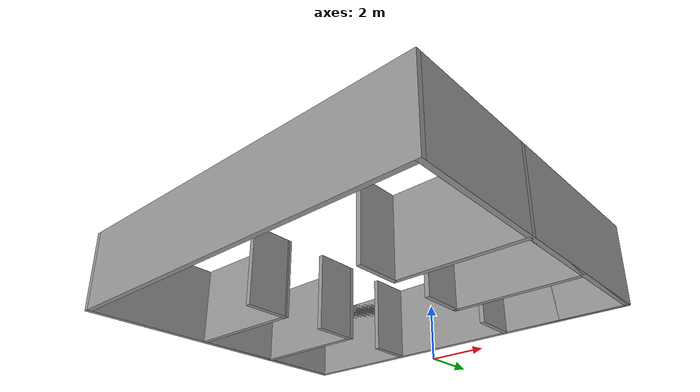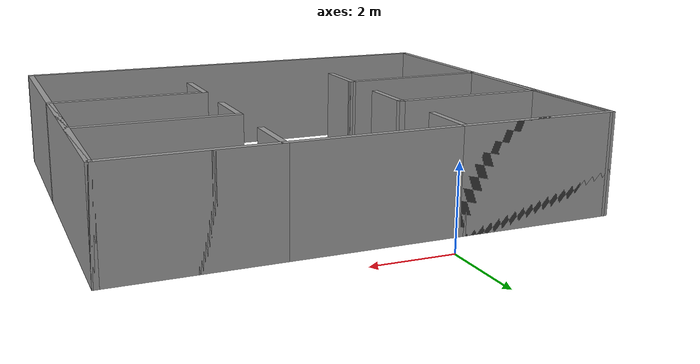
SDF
<?xml version='1.0'?>
<sdf version='1.7'>
  <model name='room1'>
    <pose>1.36453 -5.4325 0 0 -0 0</pose>
    <link name='Wall_0'>
      <collision name='Wall_0_Collision'>
        <geometry>
          <box>
            <size>12 0.15 2.5</size>
          </box>
        </geometry>
        <pose>0 0 1.25 0 -0 0</pose>
      </collision>
      <visual name='Wall_0_Visual'>
        <pose>0 0 1.25 0 -0 0</pose>
        <geometry>
          <box>
            <size>12 0.15 2.5</size>
          </box>
        </geometry>
        <material>
          <script>
            <uri>file://media/materials/scripts/gazebo.material</uri>
            <name>Gazebo/Grey</name>
          </script>
          <ambient>1 1 1 1</ambient>
        </material>
        <meta>
          <layer>0</layer>
        </meta>
      </visual>
      <pose>0.000467 4.4925 0 0 -0 0</pose>
    </link>
    <link name='Wall_1'>
      <collision name='Wall_1_Collision'>
        <geometry>
          <box>
            <size>10 0.15 2.5</size>
          </box>
        </geometry>
        <pose>0 0 1.25 0 -0 0</pose>
      </collision>
      <visual name='Wall_1_Visual'>
        <pose>0 0 1.25 0 -0 0</pose>
        <geometry>
          <box>
            <size>10 0.15 2.5</size>
          </box>
        </geometry>
        <material>
          <script>
            <uri>file://media/materials/scripts/gazebo.material</uri>
            <name>Gazebo/Grey</name>
          </script>
          <ambient>1 1 1 1</ambient>
        </material>
        <meta>
          <layer>0</layer>
        </meta>
      </visual>
      <pose>5.92547 -0.4325 0 0 -0 -1.5708</pose>
    </link>
    <link name='Wall_2'>
      <collision name='Wall_2_Collision'>
        <geometry>
          <box>
            <size>12 0.15 2.5</size>
          </box>
        </geometry>
        <pose>0 0 1.25 0 -0 0</pose>
      </collision>
      <visual name='Wall_2_Visual'>
        <pose>0 0 1.25 0 -0 0</pose>
        <geometry>
          <box>
            <size>12 0.15 2.5</size>
          </box>
        </geometry>
        <material>
          <script>
            <uri>file://media/materials/scripts/gazebo.material</uri>
            <name>Gazebo/Grey</name>
          </script>
          <ambient>1 1 1 1</ambient>
        </material>
        <meta>
          <layer>0</layer>
        </meta>
      </visual>
      <pose>0.000467 -5.3575 0 0 -0 3.14159</pose>
    </link>
    <link name='Wall_25'>
      <collision name='Wall_25_Collision'>
        <geometry>
          <box>
            <size>4 0.15 2.5</size>
          </box>
        </geometry>
        <pose>0 0 1.25 0 -0 0</pose>
      </collision>
      <visual name='Wall_25_Visual'>
        <pose>0 0 1.25 0 -0 0</pose>
        <geometry>
          <box>
            <size>4 0.15 2.5</size>
          </box>
        </geometry>
        <material>
          <script>
            <uri>file://media/materials/scripts/gazebo.material</uri>
            <name>Gazebo/Grey</name>
          </script>
          <ambient>1 1 1 1</ambient>
        </material>
        <meta>
          <layer>0</layer>
        </meta>
      </visual>
      <pose>-3.99953 4.4925 0 0 -0 0</pose>
    </link>
    <link name='Wall_26'>
      <collision name='Wall_26_Collision'>
        <geometry>
          <box>
            <size>1.5 0.15 2.5</size>
          </box>
        </geometry>
        <pose>0 0 1.25 0 -0 0</pose>
      </collision>
      <visual name='Wall_26_Visual'>
        <pose>0 0 1.25 0 -0 0</pose>
        <geometry>
          <box>
            <size>1.5 0.15 2.5</size>
          </box>
        </geometry>
        <material>
          <script>
            <uri>file://media/materials/scripts/gazebo.material</uri>
            <name>Gazebo/Grey</name>
          </script>
          <ambient>1 1 1 1</ambient>
        </material>
        <meta>
          <layer>0</layer>
        </meta>
      </visual>
      <pose>-2.07453 3.8175 0 0 -0 -1.5708</pose>
    </link>
    <link name='Wall_28'>
      <collision name='Wall_28_Collision'>
        <geometry>
          <box>
            <size>4 0.15 2.5</size>
          </box>
        </geometry>
        <pose>0 0 1.25 0 -0 0</pose>
      </collision>
      <visual name='Wall_28_Visual'>
        <pose>0 0 1.25 0 -0 0</pose>
        <geometry>
          <box>
            <size>4 0.15 2.5</size>
          </box>
        </geometry>
        <material>
          <script>
            <uri>file://media/materials/scripts/gazebo.material</uri>
            <name>Gazebo/Grey</name>
          </script>
          <ambient>1 1 1 1</ambient>
        </material>
        <meta>
          <layer>0</layer>
        </meta>
      </visual>
      <pose>4.00047 4.4925 0 0 -0 3.14159</pose>
    </link>
    <link name='Wall_29'>
      <collision name='Wall_29_Collision'>
        <geometry>
          <box>
            <size>1.5 0.15 2.5</size>
          </box>
        </geometry>
        <pose>0 0 1.25 0 -0 0</pose>
      </collision>
      <visual name='Wall_29_Visual'>
        <pose>0 0 1.25 0 -0 0</pose>
        <geometry>
          <box>
            <size>1.5 0.15 2.5</size>
          </box>
        </geometry>
        <material>
          <script>
            <uri>file://media/materials/scripts/gazebo.material</uri>
            <name>Gazebo/Grey</name>
          </script>
          <ambient>1 1 1 1</ambient>
        </material>
        <meta>
          <layer>0</layer>
        </meta>
      </visual>
      <pose>2.07547 3.8175 0 0 -0 -1.5708</pose>
    </link>
    <link name='Wall_3'>
      <collision name='Wall_3_Collision'>
        <geometry>
          <box>
            <size>10 0.15 2.5</size>
          </box>
        </geometry>
        <pose>0 0 1.25 0 -0 0</pose>
      </collision>
      <visual name='Wall_3_Visual'>
        <pose>0 0 1.25 0 -0 0</pose>
        <geometry>
          <box>
            <size>10 0.15 2.5</size>
          </box>
        </geometry>
        <material>
          <script>
            <uri>file://media/materials/scripts/gazebo.material</uri>
            <name>Gazebo/Grey</name>
          </script>
          <ambient>1 1 1 1</ambient>
        </material>
        <meta>
          <layer>0</layer>
        </meta>
      </visual>
      <pose>-5.92453 -0.4325 0 0 -0 1.5708</pose>
    </link>
    <link name='Wall_31'>
      <collision name='Wall_31_Collision'>
        <geometry>
          <box>
            <size>3.00016 0.15 2.5</size>
          </box>
        </geometry>
        <pose>0 0 1.25 0 -0 0</pose>
      </collision>
      <visual name='Wall_31_Visual'>
        <pose>0 0 1.25 0 -0 0</pose>
        <geometry>
          <box>
            <size>3.00016 0.15 2.5</size>
          </box>
        </geometry>
        <material>
          <script>
            <uri>file://media/materials/scripts/gazebo.material</uri>
            <name>Gazebo/Grey</name>
          </script>
          <ambient>1 1 1 1</ambient>
        </material>
        <meta>
          <layer>0</layer>
        </meta>
      </visual>
      <pose>-5.90932 3.0675 0 0 -0 -1.56012</pose>
    </link>
    <link name='Wall_35'>
      <collision name='Wall_35_Collision'>
        <geometry>
          <box>
            <size>3.03058 0.15 2.5</size>
          </box>
        </geometry>
        <pose>0 0 1.25 0 -0 0</pose>
      </collision>
      <visual name='Wall_35_Visual'>
        <pose>0 0 1.25 0 -0 0</pose>
        <geometry>
          <box>
            <size>3.03058 0.15 2.5</size>
          </box>
        </geometry>
        <material>
          <script>
            <uri>file://media/materials/scripts/gazebo.material</uri>
            <name>Gazebo/Grey</name>
          </script>
          <ambient>1 1 1 1</ambient>
        </material>
        <meta>
          <layer>0</layer>
        </meta>
      </visual>
      <pose>-5.90932 0.202291 0 0 -0 -1.58136</pose>
    </link>
    <link name='Wall_36'>
      <collision name='Wall_36_Collision'>
        <geometry>
          <box>
            <size>4 0.15 2.5</size>
          </box>
        </geometry>
        <pose>0 0 1.25 0 -0 0</pose>
      </collision>
      <visual name='Wall_36_Visual'>
        <pose>0 0 1.25 0 -0 0</pose>
        <geometry>
          <box>
            <size>4 0.15 2.5</size>
          </box>
        </geometry>
        <material>
          <script>
            <uri>file://media/materials/scripts/gazebo.material</uri>
            <name>Gazebo/Grey</name>
          </script>
          <ambient>1 1 1 1</ambient>
        </material>
        <meta>
          <layer>0</layer>
        </meta>
      </visual>
      <pose>-3.99953 -1.23792 0 0 -0 0.0158</pose>
    </link>
    <link name='Wall_37'>
      <collision name='Wall_37_Collision'>
        <geometry>
          <box>
            <size>1.5 0.15 2.5</size>
          </box>
        </geometry>
        <pose>0 0 1.25 0 -0 0</pose>
      </collision>
      <visual name='Wall_37_Visual'>
        <pose>0 0 1.25 0 -0 0</pose>
        <geometry>
          <box>
            <size>1.5 0.15 2.5</size>
          </box>
        </geometry>
        <material>
          <script>
            <uri>file://media/materials/scripts/gazebo.material</uri>
            <name>Gazebo/Grey</name>
          </script>
          <ambient>1 1 1 1</ambient>
        </material>
        <meta>
          <layer>0</layer>
        </meta>
      </visual>
      <pose>-2.07453 -1.8825 0 0 -0 -1.5708</pose>
    </link>
    <link name='Wall_39'>
      <collision name='Wall_39_Collision'>
        <geometry>
          <box>
            <size>3 0.15 2.5</size>
          </box>
        </geometry>
        <pose>0 0 1.25 0 -0 0</pose>
      </collision>
      <visual name='Wall_39_Visual'>
        <pose>0 0 1.25 0 -0 0</pose>
        <geometry>
          <box>
            <size>3 0.15 2.5</size>
          </box>
        </geometry>
        <material>
          <script>
            <uri>file://media/materials/scripts/gazebo.material</uri>
            <name>Gazebo/Grey</name>
          </script>
          <ambient>1 1 1 1</ambient>
        </material>
        <meta>
          <layer>0</layer>
        </meta>
      </visual>
      <pose>5.92547 3.0675 0 0 -0 -1.5708</pose>
    </link>
    <link name='Wall_40'>
      <collision name='Wall_40_Collision'>
        <geometry>
          <box>
            <size>4 0.15 2.5</size>
          </box>
        </geometry>
        <pose>0 0 1.25 0 -0 0</pose>
      </collision>
      <visual name='Wall_40_Visual'>
        <pose>0 0 1.25 0 -0 0</pose>
        <geometry>
          <box>
            <size>4 0.15 2.5</size>
          </box>
        </geometry>
        <material>
          <script>
            <uri>file://media/materials/scripts/gazebo.material</uri>
            <name>Gazebo/Grey</name>
          </script>
          <ambient>1 1 1 1</ambient>
        </material>
        <meta>
          <layer>0</layer>
        </meta>
      </visual>
      <pose>4.00047 1.6425 0 0 -0 3.14159</pose>
    </link>
    <link name='Wall_41'>
      <collision name='Wall_41_Collision'>
        <geometry>
          <box>
            <size>1.5 0.15 2.5</size>
          </box>
        </geometry>
        <pose>0 0 1.25 0 -0 0</pose>
      </collision>
      <visual name='Wall_41_Visual'>
        <pose>0 0 1.25 0 -0 0</pose>
        <geometry>
          <box>
            <size>1.5 0.15 2.5</size>
          </box>
        </geometry>
        <material>
          <script>
            <uri>file://media/materials/scripts/gazebo.material</uri>
            <name>Gazebo/Grey</name>
          </script>
          <ambient>1 1 1 1</ambient>
        </material>
        <meta>
          <layer>0</layer>
        </meta>
      </visual>
      <pose>2.07547 0.9675 0 0 -0 -1.5708</pose>
    </link>
    <link name='Wall_43'>
      <collision name='Wall_43_Collision'>
        <geometry>
          <box>
            <size>3 0.15 2.5</size>
          </box>
        </geometry>
        <pose>0 0 1.25 0 -0 0</pose>
      </collision>
      <visual name='Wall_43_Visual'>
        <pose>0 0 1.25 0 -0 0</pose>
        <geometry>
          <box>
            <size>3 0.15 2.5</size>
          </box>
        </geometry>
        <material>
          <script>
            <uri>file://media/materials/scripts/gazebo.material</uri>
            <name>Gazebo/Grey</name>
          </script>
          <ambient>1 1 1 1</ambient>
        </material>
        <meta>
          <layer>0</layer>
        </meta>
      </visual>
      <pose>5.92547 0.2175 0 0 -0 -1.5708</pose>
    </link>
    <link name='Wall_44'>
      <collision name='Wall_44_Collision'>
        <geometry>
          <box>
            <size>4 0.15 2.5</size>
          </box>
        </geometry>
        <pose>0 0 1.25 0 -0 0</pose>
      </collision>
      <visual name='Wall_44_Visual'>
        <pose>0 0 1.25 0 -0 0</pose>
        <geometry>
          <box>
            <size>4 0.15 2.5</size>
          </box>
        </geometry>
        <material>
          <script>
            <uri>file://media/materials/scripts/gazebo.material</uri>
            <name>Gazebo/Grey</name>
          </script>
          <ambient>1 1 1 1</ambient>
        </material>
        <meta>
          <layer>0</layer>
        </meta>
      </visual>
      <pose>4.00047 -1.2075 0 0 -0 3.14159</pose>
    </link>
    <link name='Wall_45'>
      <collision name='Wall_45_Collision'>
        <geometry>
          <box>
            <size>1.5 0.15 2.5</size>
          </box>
        </geometry>
        <pose>0 0 1.25 0 -0 0</pose>
      </collision>
      <visual name='Wall_45_Visual'>
        <pose>0 0 1.25 0 -0 0</pose>
        <geometry>
          <box>
            <size>1.5 0.15 2.5</size>
          </box>
        </geometry>
        <material>
          <script>
            <uri>file://media/materials/scripts/gazebo.material</uri>
            <name>Gazebo/Grey</name>
          </script>
          <ambient>1 1 1 1</ambient>
        </material>
        <meta>
          <layer>0</layer>
        </meta>
      </visual>
      <pose>2.07547 -1.8825 0 0 -0 -1.5708</pose>
    </link>
    <link name='Wall_47'>
      <collision name='Wall_47_Collision'>
        <geometry>
          <box>
            <size>3.00016 0.15 2.5</size>
          </box>
        </geometry>
        <pose>0 0 1.25 0 -0 0</pose>
      </collision>
      <visual name='Wall_47_Visual'>
        <pose>0 0 1.25 0 -0 0</pose>
        <geometry>
          <box>
            <size>3.00016 0.15 2.5</size>
          </box>
        </geometry>
        <material>
          <script>
            <uri>file://media/materials/scripts/gazebo.material</uri>
            <name>Gazebo/Grey</name>
          </script>
          <ambient>1 1 1 1</ambient>
        </material>
        <meta>
          <layer>0</layer>
        </meta>
      </visual>
      <pose>-5.90932 3.0675 0 0 -0 -1.56012</pose>
    </link>
    <link name='Wall_48'>
      <collision name='Wall_48_Collision'>
        <geometry>
          <box>
            <size>4 0.15 2.5</size>
          </box>
        </geometry>
        <pose>0 0 1.25 0 -0 0</pose>
      </collision>
      <visual name='Wall_48_Visual'>
        <pose>0 0 1.25 0 -0 0</pose>
        <geometry>
          <box>
            <size>4 0.15 2.5</size>
          </box>
        </geometry>
        <material>
          <script>
            <uri>file://media/materials/scripts/gazebo.material</uri>
            <name>Gazebo/Grey</name>
          </script>
          <ambient>1 1 1 1</ambient>
        </material>
        <meta>
          <layer>0</layer>
        </meta>
      </visual>
      <pose>-3.96911 1.6425 0 0 -0 0</pose>
    </link>
    <link name='Wall_49'>
      <collision name='Wall_49_Collision'>
        <geometry>
          <box>
            <size>1.5 0.15 2.5</size>
          </box>
        </geometry>
        <pose>0 0 1.25 0 -0 0</pose>
      </collision>
      <visual name='Wall_49_Visual'>
        <pose>0 0 1.25 0 -0 0</pose>
        <geometry>
          <box>
            <size>1.5 0.15 2.5</size>
          </box>
        </geometry>
        <material>
          <script>
            <uri>file://media/materials/scripts/gazebo.material</uri>
            <name>Gazebo/Grey</name>
          </script>
          <ambient>1 1 1 1</ambient>
        </material>
        <meta>
          <layer>0</layer>
        </meta>
      </visual>
      <pose>-2.04412 0.9675 0 0 -0 -1.5708</pose>
    </link>
    <static>1</static>
  </model>
</sdf>
